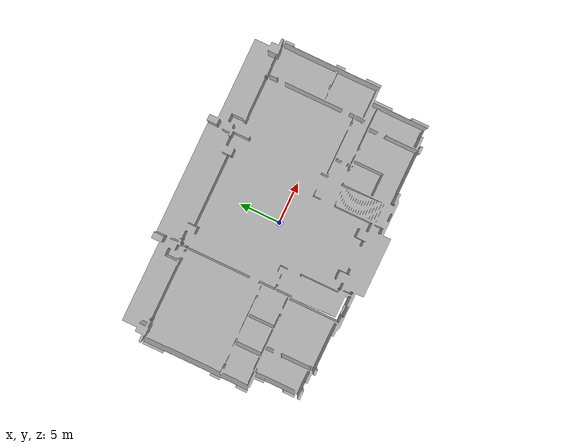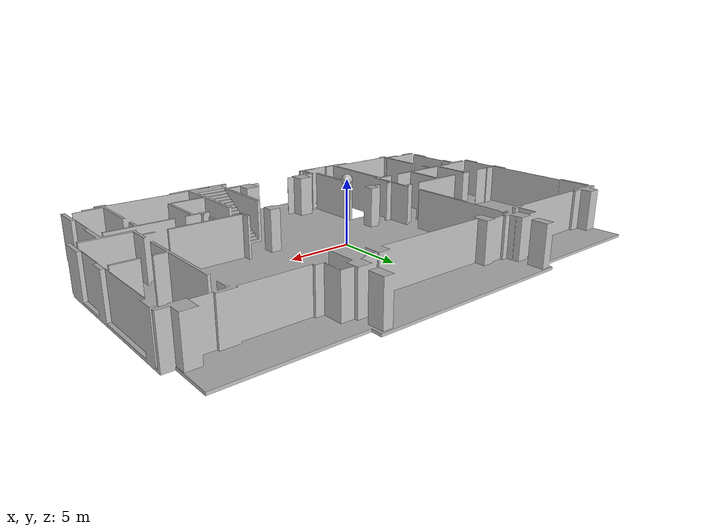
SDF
<?xml version="1.0" ?>
<sdf version="1.9">
  <world name="villa_collision_test">

    <physics name="1ms" type="ignored">
      <max_step_size>0.001</max_step_size>
      <real_time_factor>1.0</real_time_factor>
    </physics>

    <plugin
      filename="gz-sim-physics-system"
      name="gz::sim::systems::Physics"/>

    <plugin
      filename="gz-sim-user-commands-system"
      name="gz::sim::systems::UserCommands"/>

    <plugin
      filename="gz-sim-scene-broadcaster-system"
      name="gz::sim::systems::SceneBroadcaster"/>

    <light type="directional" name="sun">
      <pose>0 0 20 0 0 0</pose>
      <diffuse>0.8 0.8 0.8 1</diffuse>
      <specular>0.2 0.2 0.2 1</specular>
      <direction>-0.5 0.1 -0.9</direction>
    </light>

    <include>
      <uri>model://villa_1F</uri>
    </include>

    <model name="test_ball">
      <pose>0 0 5 0 0 0</pose>

      <link name="ball_link">

        <inertial>
          <mass>1.0</mass>
          <inertia>
            <ixx>0.016</ixx>
            <iyy>0.016</iyy>
            <izz>0.016</izz>
          </inertia>
        </inertial>

        <collision name="ball_collision">
          <geometry>
            <sphere>
              <radius>0.4</radius>
            </sphere>
          </geometry>
        </collision>

        <visual name="ball_visual">
          <geometry>
            <sphere>
              <radius>0.4</radius>
            </sphere>
          </geometry>
        </visual>

      </link>
    </model>

  </world>
</sdf>

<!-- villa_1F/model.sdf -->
<sdf version="1.9">
  <model name="villa_1F">
    <static>true</static>
    <link name="villa_1F_link">
      <visual name="villa_1F_visual">
        <geometry><mesh><uri>meshes/villa_1F.obj</uri></mesh></geometry>
      </visual>
      <collision name="villa_1F_collision">
        <geometry><mesh><uri>meshes/villa_1F.obj</uri></mesh></geometry>
      </collision>
    </link>
  </model>
</sdf>
